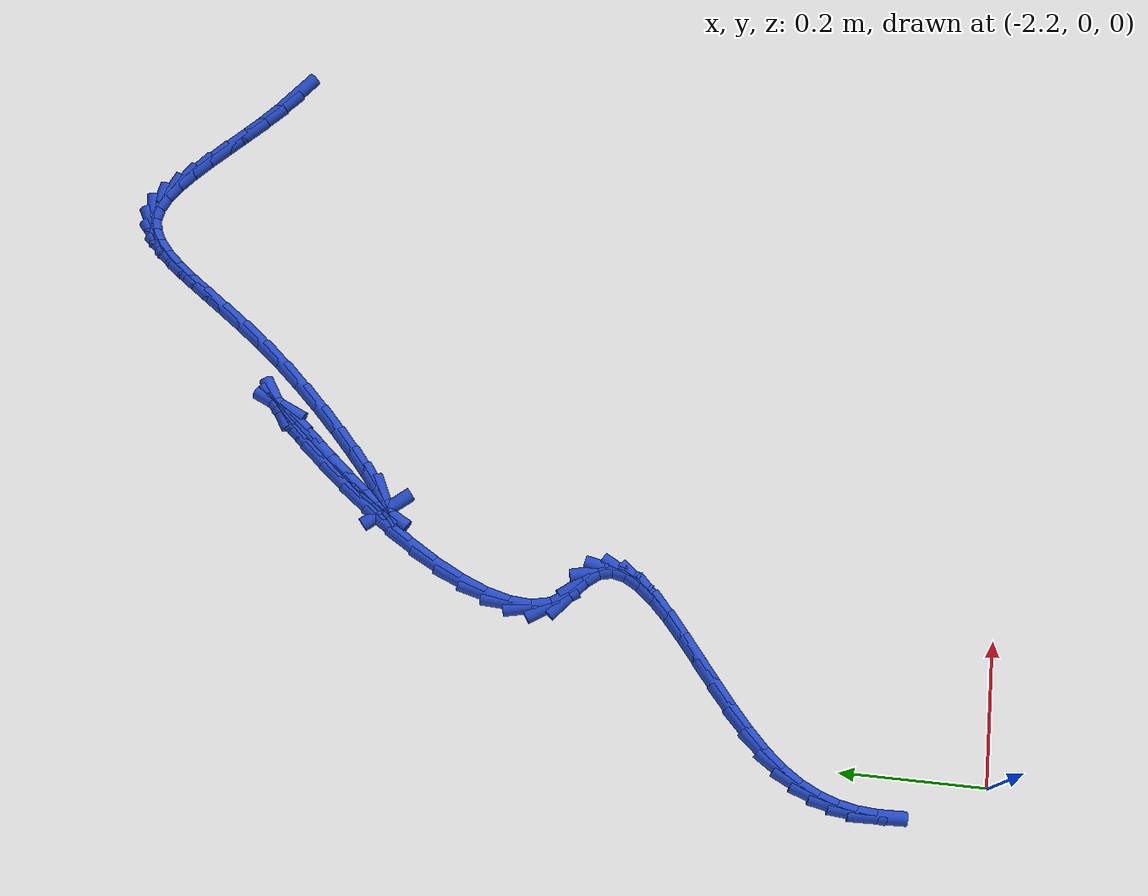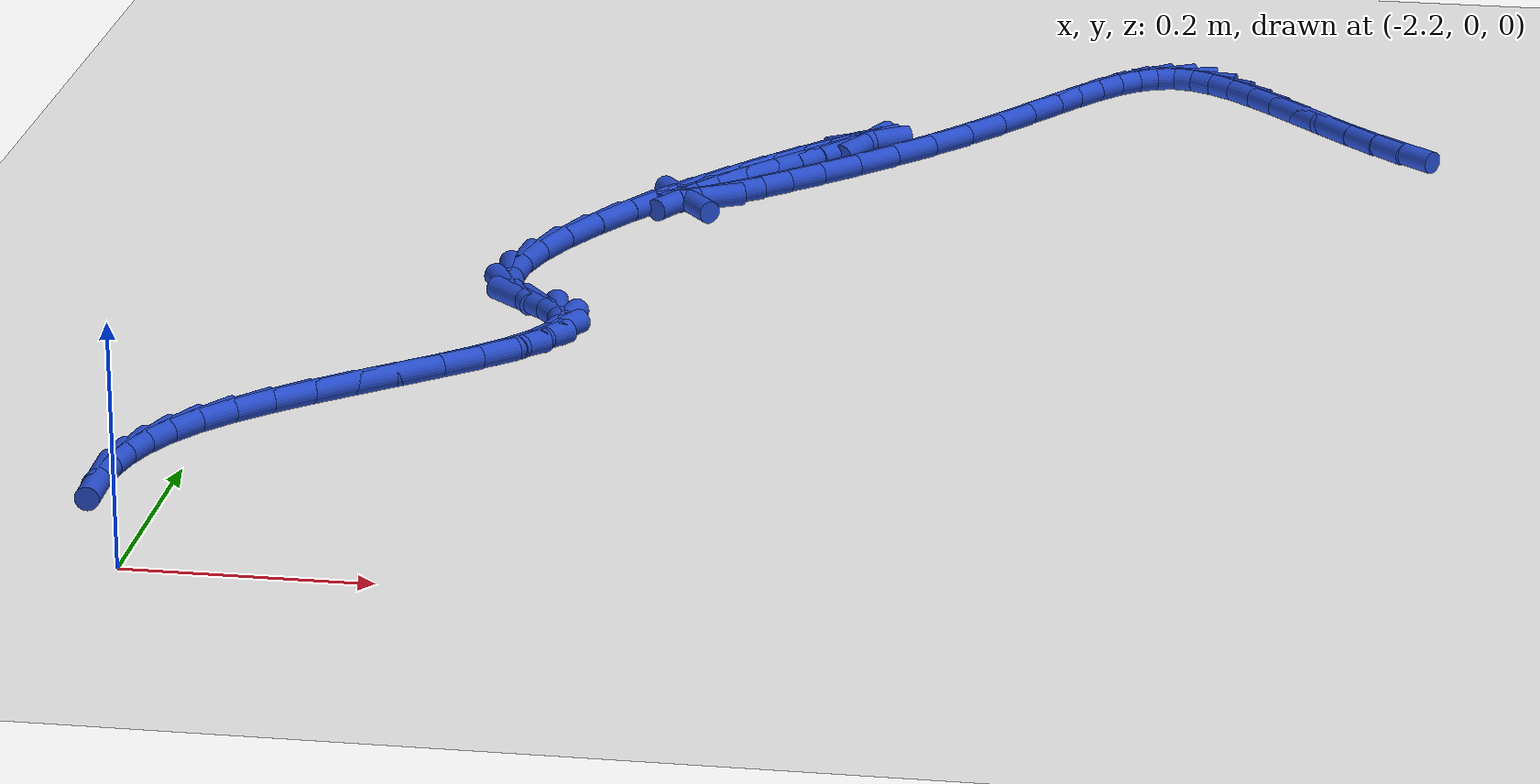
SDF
<sdf version="1.6">
 <world name="default">
  <model name="ground_plane">
   <static>1</static>
   <link name="link">
    <collision name="collision">
     <geometry><plane><normal>0 0 1</normal><size>100 100</size></plane></geometry>
     <surface><friction><ode><mu>100</mu><mu2>50</mu2></ode></friction></surface>
    </collision>
    <visual name="visual">
     <cast_shadows>0</cast_shadows>
     <geometry><plane><normal>0 0 1</normal><size>100 100</size></plane></geometry>
     <material>
      <script><uri>file://media/materials/scripts/gazebo.material</uri><name>Gazebo/WhiteGlow</name></script>
     </material>
    </visual>
   </link>
  </model>
  <model name="line">
   <link name="link_79">
    <pose>-1.2901043442349123 1.0720139163094948 0.01 0 1.57 -0.6776524261375835</pose>
    <collision name="collision">
     <geometry><cylinder><radius>0.01</radius><length>0.08</length></cylinder></geometry>
    </collision>
    <visual name="visual">
     <material>
      <script><name>Gazebo/Blue</name><uri>file://media/materials/scripts/gazebo.material</uri></script>
     </material>
     <geometry><cylinder><radius>0.01</radius><length>0.08</length></cylinder></geometry>
    </visual>
   </link>
   <link name="link_80">
    <pose>-1.3153149210935162 1.0923030354815728 0.01 0 1.57 -0.7389002873766598</pose>
    <collision name="collision">
     <geometry><cylinder><radius>0.01</radius><length>0.08</length></cylinder></geometry>
    </collision>
    <visual name="visual">
     <material>
      <script><name>Gazebo/Blue</name><uri>file://media/materials/scripts/gazebo.material</uri></script>
     </material>
     <geometry><cylinder><radius>0.01</radius><length>0.08</length></cylinder></geometry>
    </visual>
   </link>
   <link name="link_81">
    <pose>-1.3399236407583004 1.1147234241737765 0.01 0 1.57 -0.7763167239685663</pose>
    <collision name="collision">
     <geometry><cylinder><radius>0.01</radius><length>0.08</length></cylinder></geometry>
    </collision>
    <visual name="visual">
     <material>
      <script><name>Gazebo/Blue</name><uri>file://media/materials/scripts/gazebo.material</uri></script>
     </material>
     <geometry><cylinder><radius>0.01</radius><length>0.08</length></cylinder></geometry>
    </visual>
   </link>
   <link name="link_82">
    <pose>-1.363885791238167 1.1382542581348243 0.01 0 1.57 -0.7928532567139746</pose>
    <collision name="collision">
     <geometry><cylinder><radius>0.01</radius><length>0.08</length></cylinder></geometry>
    </collision>
    <visual name="visual">
     <material>
      <script><name>Gazebo/Blue</name><uri>file://media/materials/scripts/gazebo.material</uri></script>
     </material>
     <geometry><cylinder><radius>0.01</radius><length>0.08</length></cylinder></geometry>
    </visual>
   </link>
   <link name="link_83">
    <pose>-1.387156660542018 1.1618747131134333 0.01 0 1.57 -0.7888117175281081</pose>
    <collision name="collision">
     <geometry><cylinder><radius>0.01</radius><length>0.08</length></cylinder></geometry>
    </collision>
    <visual name="visual">
     <material>
      <script><name>Gazebo/Blue</name><uri>file://media/materials/scripts/gazebo.material</uri></script>
     </material>
     <geometry><cylinder><radius>0.01</radius><length>0.08</length></cylinder></geometry>
    </visual>
   </link>
   <link name="link_84">
    <pose>-1.409691536678756 1.1845639648583204 0.01 0 1.57 -0.7614697276646047</pose>
    <collision name="collision">
     <geometry><cylinder><radius>0.01</radius><length>0.08</length></cylinder></geometry>
    </collision>
    <visual name="visual">
     <material>
      <script><name>Gazebo/Blue</name><uri>file://media/materials/scripts/gazebo.material</uri></script>
     </material>
     <geometry><cylinder><radius>0.01</radius><length>0.08</length></cylinder></geometry>
    </visual>
   </link>
   <link name="link_85">
    <pose>-1.4314457076572833 1.2053011891182042 0.01 0 1.57 -0.7037982748605762</pose>
    <collision name="collision">
     <geometry><cylinder><radius>0.01</radius><length>0.08</length></cylinder></geometry>
    </collision>
    <visual name="visual">
     <material>
      <script><name>Gazebo/Blue</name><uri>file://media/materials/scripts/gazebo.material</uri></script>
     </material>
     <geometry><cylinder><radius>0.01</radius><length>0.08</length></cylinder></geometry>
    </visual>
   </link>
   <link name="link_86">
    <pose>-1.4523744614865024 1.2230655616418022 0.01 0 1.57 -0.6016232552019897</pose>
    <collision name="collision">
     <geometry><cylinder><radius>0.01</radius><length>0.08</length></cylinder></geometry>
    </collision>
    <visual name="visual">
     <material>
      <script><name>Gazebo/Blue</name><uri>file://media/materials/scripts/gazebo.material</uri></script>
     </material>
     <geometry><cylinder><radius>0.01</radius><length>0.08</length></cylinder></geometry>
    </visual>
   </link>
   <link name="link_87">
    <pose>-1.4724330861753154 1.2368362581778316 0.01 0 1.57 -0.42898334407492905</pose>
    <collision name="collision">
     <geometry><cylinder><radius>0.01</radius><length>0.08</length></cylinder></geometry>
    </collision>
    <visual name="visual">
     <material>
      <script><name>Gazebo/Blue</name><uri>file://media/materials/scripts/gazebo.material</uri></script>
     </material>
     <geometry><cylinder><radius>0.01</radius><length>0.08</length></cylinder></geometry>
    </visual>
   </link>
   <link name="link_88">
    <pose>-1.4915768697326242 1.2455924544750097 0.01 0 1.57 -0.14964463601095662</pose>
    <collision name="collision">
     <geometry><cylinder><radius>0.01</radius><length>0.08</length></cylinder></geometry>
    </collision>
    <visual name="visual">
     <material>
      <script><name>Gazebo/Blue</name><uri>file://media/materials/scripts/gazebo.material</uri></script>
     </material>
     <geometry><cylinder><radius>0.01</radius><length>0.08</length></cylinder></geometry>
    </visual>
   </link>
   <link name="link_89">
    <pose>-1.5097666722596088 1.248334962950615 0.01 0 1.57 0.20183104182878053</pose>
    <collision name="collision">
     <geometry><cylinder><radius>0.01</radius><length>0.08</length></cylinder></geometry>
    </collision>
    <visual name="visual">
     <material>
      <script><name>Gazebo/Blue</name><uri>file://media/materials/scripts/gazebo.material</uri></script>
     </material>
     <geometry><cylinder><radius>0.01</radius><length>0.08</length></cylinder></geometry>
    </visual>
   </link>
   <link name="link_90">
    <pose>-1.527147232465894 1.2447786043886735 0.01 0 1.57 0.5012429227752904</pose>
    <collision name="collision">
     <geometry><cylinder><radius>0.01</radius><length>0.08</length></cylinder></geometry>
    </collision>
    <visual name="visual">
     <material>
      <script><name>Gazebo/Blue</name><uri>file://media/materials/scripts/gazebo.material</uri></script>
     </material>
     <geometry><cylinder><radius>0.01</radius><length>0.08</length></cylinder></geometry>
    </visual>
   </link>
   <link name="link_91">
    <pose>-1.5440847728310727 1.2354982303630484 0.01 0 1.57 0.7057158744718162</pose>
    <collision name="collision">
     <geometry><cylinder><radius>0.01</radius><length>0.08</length></cylinder></geometry>
    </collision>
    <visual name="visual">
     <material>
      <script><name>Gazebo/Blue</name><uri>file://media/materials/scripts/gazebo.material</uri></script>
     </material>
     <geometry><cylinder><radius>0.01</radius><length>0.08</length></cylinder></geometry>
    </visual>
   </link>
   <link name="link_92">
    <pose>-1.5609586906840764 1.2211198509414565 0.01 0 1.57 0.8314443654275016</pose>
    <collision name="collision">
     <geometry><cylinder><radius>0.01</radius><length>0.08</length></cylinder></geometry>
    </collision>
    <visual name="visual">
     <material>
      <script><name>Gazebo/Blue</name><uri>file://media/materials/scripts/gazebo.material</uri></script>
     </material>
     <geometry><cylinder><radius>0.01</radius><length>0.08</length></cylinder></geometry>
    </visual>
   </link>
   <link name="link_93">
    <pose>-1.578148383353839 1.2022694761916128 0.01 0 1.57 0.9034117900793829</pose>
    <collision name="collision">
     <geometry><cylinder><radius>0.01</radius><length>0.08</length></cylinder></geometry>
    </collision>
    <visual name="visual">
     <material>
      <script><name>Gazebo/Blue</name><uri>file://media/materials/scripts/gazebo.material</uri></script>
     </material>
     <geometry><cylinder><radius>0.01</radius><length>0.08</length></cylinder></geometry>
    </visual>
   </link>
   <link name="link_94">
    <pose>-1.5960332481692932 1.1795731161812342 0.01 0 1.57 0.9391996330216287</pose>
    <collision name="collision">
     <geometry><cylinder><radius>0.01</radius><length>0.08</length></cylinder></geometry>
    </collision>
    <visual name="visual">
     <material>
      <script><name>Gazebo/Blue</name><uri>file://media/materials/scripts/gazebo.material</uri></script>
     </material>
     <geometry><cylinder><radius>0.01</radius><length>0.08</length></cylinder></geometry>
    </visual>
   </link>
   <link name="link_95">
    <pose>-1.6149926824593714 1.1536567809780367 0.01 0 1.57 0.9494120215589066</pose>
    <collision name="collision">
     <geometry><cylinder><radius>0.01</radius><length>0.08</length></cylinder></geometry>
    </collision>
    <visual name="visual">
     <material>
      <script><name>Gazebo/Blue</name><uri>file://media/materials/scripts/gazebo.material</uri></script>
     </material>
     <geometry><cylinder><radius>0.01</radius><length>0.08</length></cylinder></geometry>
    </visual>
   </link>
   <link name="link_96">
    <pose>-1.6354060835530067 1.1251464806497362 0.01 0 1.57 0.9402691108169824</pose>
    <collision name="collision">
     <geometry><cylinder><radius>0.01</radius><length>0.08</length></cylinder></geometry>
    </collision>
    <visual name="visual">
     <material>
      <script><name>Gazebo/Blue</name><uri>file://media/materials/scripts/gazebo.material</uri></script>
     </material>
     <geometry><cylinder><radius>0.01</radius><length>0.08</length></cylinder></geometry>
    </visual>
   </link>
   <link name="link_97">
    <pose>-1.6576528487791318 1.0946682252640492 0.01 0 1.57 0.9154473075839894</pose>
    <collision name="collision">
     <geometry><cylinder><radius>0.01</radius><length>0.08</length></cylinder></geometry>
    </collision>
    <visual name="visual">
     <material>
      <script><name>Gazebo/Blue</name><uri>file://media/materials/scripts/gazebo.material</uri></script>
     </material>
     <geometry><cylinder><radius>0.01</radius><length>0.08</length></cylinder></geometry>
    </visual>
   </link>
   <link name="link_98">
    <pose>-1.6821123754666798 1.0628480248886913 0.01 0 1.57 0.8772695401624631</pose>
    <collision name="collision">
     <geometry><cylinder><radius>0.01</radius><length>0.08</length></cylinder></geometry>
    </collision>
    <visual name="visual">
     <material>
      <script><name>Gazebo/Blue</name><uri>file://media/materials/scripts/gazebo.material</uri></script>
     </material>
     <geometry><cylinder><radius>0.01</radius><length>0.08</length></cylinder></geometry>
    </visual>
   </link>
   <link name="link_99">
    <pose>-1.7091580330420555 1.030313171464681 0.01 0 1.57 0.8347467936540578</pose>
    <collision name="collision">
     <geometry><cylinder><radius>0.01</radius><length>0.08</length></cylinder></geometry>
    </collision>
    <visual name="visual">
     <material>
      <script><name>Gazebo/Blue</name><uri>file://media/materials/scripts/gazebo.material</uri></script>
     </material>
     <geometry><cylinder><radius>0.01</radius><length>0.08</length></cylinder></geometry>
    </visual>
   </link>
   <link name="link_100">
    <pose>-1.7386013283024369 0.997810440733693 0.01 0 1.57 0.7993543192485002</pose>
    <collision name="collision">
     <geometry><cylinder><radius>0.01</radius><length>0.08</length></cylinder></geometry>
    </collision>
    <visual name="visual">
     <material>
      <script><name>Gazebo/Blue</name><uri>file://media/materials/scripts/gazebo.material</uri></script>
     </material>
     <geometry><cylinder><radius>0.01</radius><length>0.08</length></cylinder></geometry>
    </visual>
   </link>
   <link name="link_101">
    <pose>-1.7692427201303538 0.9663016144570251 0.01 0 1.57 0.768691433120469</pose>
    <collision name="collision">
     <geometry><cylinder><radius>0.01</radius><length>0.08</length></cylinder></geometry>
    </collision>
    <visual name="visual">
     <material>
      <script><name>Gazebo/Blue</name><uri>file://media/materials/scripts/gazebo.material</uri></script>
     </material>
     <geometry><cylinder><radius>0.01</radius><length>0.08</length></cylinder></geometry>
    </visual>
   </link>
   <link name="link_102">
    <pose>-1.7997769629702334 0.9367709531431896 0.01 0 1.57 0.7395762721959547</pose>
    <collision name="collision">
     <geometry><cylinder><radius>0.01</radius><length>0.08</length></cylinder></geometry>
    </collision>
    <visual name="visual">
     <material>
      <script><name>Gazebo/Blue</name><uri>file://media/materials/scripts/gazebo.material</uri></script>
     </material>
     <geometry><cylinder><radius>0.01</radius><length>0.08</length></cylinder></geometry>
    </visual>
   </link>
   <link name="link_103">
    <pose>-1.828898811266499 0.910202717300699 0.01 0 1.57 0.7083941769464632</pose>
    <collision name="collision">
     <geometry><cylinder><radius>0.01</radius><length>0.08</length></cylinder></geometry>
    </collision>
    <visual name="visual">
     <material>
      <script><name>Gazebo/Blue</name><uri>file://media/materials/scripts/gazebo.material</uri></script>
     </material>
     <geometry><cylinder><radius>0.01</radius><length>0.08</length></cylinder></geometry>
    </visual>
   </link>
   <link name="link_104">
    <pose>-1.8553030194635756 0.8875811674380657 0.01 0 1.57 0.6688709761731342</pose>
    <collision name="collision">
     <geometry><cylinder><radius>0.01</radius><length>0.08</length></cylinder></geometry>
    </collision>
    <visual name="visual">
     <material>
      <script><name>Gazebo/Blue</name><uri>file://media/materials/scripts/gazebo.material</uri></script>
     </material>
     <geometry><cylinder><radius>0.01</radius><length>0.08</length></cylinder></geometry>
    </visual>
   </link>
   <link name="link_105">
    <pose>-1.877684342005888 0.869890564063802 0.01 0 1.57 0.6043282909779923</pose>
    <collision name="collision">
     <geometry><cylinder><radius>0.01</radius><length>0.08</length></cylinder></geometry>
    </collision>
    <visual name="visual">
     <material>
      <script><name>Gazebo/Blue</name><uri>file://media/materials/scripts/gazebo.material</uri></script>
     </material>
     <geometry><cylinder><radius>0.01</radius><length>0.08</length></cylinder></geometry>
    </visual>
   </link>
   <link name="link_106">
    <pose>-1.8947375333378613 0.8581151676864206 0.01 0 1.57 0.4376786348378197</pose>
    <collision name="collision">
     <geometry><cylinder><radius>0.01</radius><length>0.08</length></cylinder></geometry>
    </collision>
    <visual name="visual">
     <material>
      <script><name>Gazebo/Blue</name><uri>file://media/materials/scripts/gazebo.material</uri></script>
     </material>
     <geometry><cylinder><radius>0.01</radius><length>0.08</length></cylinder></geometry>
    </visual>
   </link>
   <link name="link_107">
    <pose>-1.9051573479039194 0.8532392388144333 0.01 0 1.57 -0.8810441669115423</pose>
    <collision name="collision">
     <geometry><cylinder><radius>0.01</radius><length>0.08</length></cylinder></geometry>
    </collision>
    <visual name="visual">
     <material>
      <script><name>Gazebo/Blue</name><uri>file://media/materials/scripts/gazebo.material</uri></script>
     </material>
     <geometry><cylinder><radius>0.01</radius><length>0.08</length></cylinder></geometry>
    </visual>
   </link>
   <link name="link_108">
    <pose>-1.907638540148488 0.8562470379563528 0.01 0 1.57 1.0590846755172367</pose>
    <collision name="collision">
     <geometry><cylinder><radius>0.01</radius><length>0.08</length></cylinder></geometry>
    </collision>
    <visual name="visual">
     <material>
      <script><name>Gazebo/Blue</name><uri>file://media/materials/scripts/gazebo.material</uri></script>
     </material>
     <geometry><cylinder><radius>0.01</radius><length>0.08</length></cylinder></geometry>
    </visual>
   </link>
   <link name="link_109">
    <pose>-1.901065195925116 0.8679515425732057 0.01 0 1.57 0.9229385195386111</pose>
    <collision name="collision">
     <geometry><cylinder><radius>0.01</radius><length>0.08</length></cylinder></geometry>
    </collision>
    <visual name="visual">
     <material>
      <script><name>Gazebo/Blue</name><uri>file://media/materials/scripts/gazebo.material</uri></script>
     </material>
     <geometry><cylinder><radius>0.01</radius><length>0.08</length></cylinder></geometry>
    </visual>
   </link>
   <link name="link_110">
    <pose>-1.8865041846904893 0.8871910243480584 0.01 0 1.57 0.8810869405465815</pose>
    <collision name="collision">
     <geometry><cylinder><radius>0.01</radius><length>0.08</length></cylinder></geometry>
    </collision>
    <visual name="visual">
     <material>
      <script><name>Gazebo/Blue</name><uri>file://media/materials/scripts/gazebo.material</uri></script>
     </material>
     <geometry><cylinder><radius>0.01</radius><length>0.08</length></cylinder></geometry>
    </visual>
   </link>
   <link name="link_111">
    <pose>-1.866422032023548 0.911537523612506 0.01 0 1.57 0.8628780778216575</pose>
    <collision name="collision">
     <geometry><cylinder><radius>0.01</radius><length>0.08</length></cylinder></geometry>
    </collision>
    <visual name="visual">
     <material>
      <script><name>Gazebo/Blue</name><uri>file://media/materials/scripts/gazebo.material</uri></script>
     </material>
     <geometry><cylinder><radius>0.01</radius><length>0.08</length></cylinder></geometry>
    </visual>
   </link>
   <link name="link_112">
    <pose>-1.8433082081360064 0.9385423233043061 0.01 0 1.57 0.8552338829166365</pose>
    <collision name="collision">
     <geometry><cylinder><radius>0.01</radius><length>0.08</length></cylinder></geometry>
    </collision>
    <visual name="visual">
     <material>
      <script><name>Gazebo/Blue</name><uri>file://media/materials/scripts/gazebo.material</uri></script>
     </material>
     <geometry><cylinder><radius>0.01</radius><length>0.08</length></cylinder></geometry>
    </visual>
   </link>
   <link name="link_113">
    <pose>-1.8196521832395776 0.9657567063612162 0.01 0 1.57 0.8552546061119436</pose>
    <collision name="collision">
     <geometry><cylinder><radius>0.01</radius><length>0.08</length></cylinder></geometry>
    </collision>
    <visual name="visual">
     <material>
      <script><name>Gazebo/Blue</name><uri>file://media/materials/scripts/gazebo.material</uri></script>
     </material>
     <geometry><cylinder><radius>0.01</radius><length>0.08</length></cylinder></geometry>
    </visual>
   </link>
   <link name="link_114">
    <pose>-1.7979434275459765 0.9907319557209942 0.01 0 1.57 0.8655093382421808</pose>
    <collision name="collision">
     <geometry><cylinder><radius>0.01</radius><length>0.08</length></cylinder></geometry>
    </collision>
    <visual name="visual">
     <material>
      <script><name>Gazebo/Blue</name><uri>file://media/materials/scripts/gazebo.material</uri></script>
     </material>
     <geometry><cylinder><radius>0.01</radius><length>0.08</length></cylinder></geometry>
    </visual>
   </link>
   <link name="link_115">
    <pose>-1.7806714112669169 1.011019354321397 0.01 0 1.57 0.9040978821987367</pose>
    <collision name="collision">
     <geometry><cylinder><radius>0.01</radius><length>0.08</length></cylinder></geometry>
    </collision>
    <visual name="visual">
     <material>
      <script><name>Gazebo/Blue</name><uri>file://media/materials/scripts/gazebo.material</uri></script>
     </material>
     <geometry><cylinder><radius>0.01</radius><length>0.08</length></cylinder></geometry>
    </visual>
   </link>
   <link name="link_116">
    <pose>-1.7703166715415162 1.0241783505910396 0.01 0 1.57 1.1476176777409994</pose>
    <collision name="collision">
     <geometry><cylinder><radius>0.01</radius><length>0.08</length></cylinder></geometry>
    </collision>
    <visual name="visual">
     <material>
      <script><name>Gazebo/Blue</name><uri>file://media/materials/scripts/gazebo.material</uri></script>
     </material>
     <geometry><cylinder><radius>0.01</radius><length>0.08</length></cylinder></geometry>
    </visual>
   </link>
   <link name="link_117">
    <pose>-1.768237895683844 1.0287938468985736 0.01 0 1.57 0.5564982970648445</pose>
    <collision name="collision">
     <geometry><cylinder><radius>0.01</radius><length>0.08</length></cylinder></geometry>
    </collision>
    <visual name="visual">
     <material>
      <script><name>Gazebo/Blue</name><uri>file://media/materials/scripts/gazebo.material</uri></script>
     </material>
     <geometry><cylinder><radius>0.01</radius><length>0.08</length></cylinder></geometry>
    </visual>
   </link>
   <link name="link_118">
    <pose>-1.7735925930150356 1.0254627855445342 0.01 0 1.57 0.7293047658415545</pose>
    <collision name="collision">
     <geometry><cylinder><radius>0.01</radius><length>0.08</length></cylinder></geometry>
    </collision>
    <visual name="visual">
     <material>
      <script><name>Gazebo/Blue</name><uri>file://media/materials/scripts/gazebo.material</uri></script>
     </material>
     <geometry><cylinder><radius>0.01</radius><length>0.08</length></cylinder></geometry>
    </visual>
   </link>
   <link name="link_119">
    <pose>-1.7852822200753438 1.0150161600608685 0.01 0 1.57 0.7796099511226037</pose>
    <collision name="collision">
     <geometry><cylinder><radius>0.01</radius><length>0.08</length></cylinder></geometry>
    </collision>
    <visual name="visual">
     <material>
      <script><name>Gazebo/Blue</name><uri>file://media/materials/scripts/gazebo.material</uri></script>
     </material>
     <geometry><cylinder><radius>0.01</radius><length>0.08</length></cylinder></geometry>
    </visual>
   </link>
   <link name="link_120">
    <pose>-1.8022082334050236 0.9982849639795236 0.01 0 1.57 0.8113103400034559</pose>
    <collision name="collision">
     <geometry><cylinder><radius>0.01</radius><length>0.08</length></cylinder></geometry>
    </collision>
    <visual name="visual">
     <material>
      <script><name>Gazebo/Blue</name><uri>file://media/materials/scripts/gazebo.material</uri></script>
     </material>
     <geometry><cylinder><radius>0.01</radius><length>0.08</length></cylinder></geometry>
    </visual>
   </link>
   <link name="link_121">
    <pose>-1.823272089544327 0.9761001908324461 0.01 0 1.57 0.8384650482379551</pose>
    <collision name="collision">
     <geometry><cylinder><radius>0.01</radius><length>0.08</length></cylinder></geometry>
    </collision>
    <visual name="visual">
     <material>
      <script><name>Gazebo/Blue</name><uri>file://media/materials/scripts/gazebo.material</uri></script>
     </material>
     <geometry><cylinder><radius>0.01</radius><length>0.08</length></cylinder></geometry>
    </visual>
   </link>
   <link name="link_122">
    <pose>-1.8473752450335088 0.9492928341515834 0.01 0 1.57 0.8656422482386331</pose>
    <collision name="collision">
     <geometry><cylinder><radius>0.01</radius><length>0.08</length></cylinder></geometry>
    </collision>
    <visual name="visual">
     <material>
      <script><name>Gazebo/Blue</name><uri>file://media/materials/scripts/gazebo.material</uri></script>
     </material>
     <geometry><cylinder><radius>0.01</radius><length>0.08</length></cylinder></geometry>
    </visual>
   </link>
   <link name="link_123">
    <pose>-1.8734191564128224 0.9186938874688826 0.01 0 1.57 0.8953564492134432</pose>
    <collision name="collision">
     <geometry><cylinder><radius>0.01</radius><length>0.08</length></cylinder></geometry>
    </collision>
    <visual name="visual">
     <material>
      <script><name>Gazebo/Blue</name><uri>file://media/materials/scripts/gazebo.material</uri></script>
     </material>
     <geometry><cylinder><radius>0.01</radius><length>0.08</length></cylinder></geometry>
    </visual>
   </link>
   <link name="link_124">
    <pose>-1.9003052802225213 0.8851343443162912 0.01 0 1.57 0.9297577196135308</pose>
    <collision name="collision">
     <geometry><cylinder><radius>0.01</radius><length>0.08</length></cylinder></geometry>
    </collision>
    <visual name="visual">
     <material>
      <script><name>Gazebo/Blue</name><uri>file://media/materials/scripts/gazebo.material</uri></script>
     </material>
     <geometry><cylinder><radius>0.01</radius><length>0.08</length></cylinder></geometry>
    </visual>
   </link>
   <link name="link_125">
    <pose>-1.926935073002859 0.8494451982257547 0.01 0 1.57 0.9713447259498719</pose>
    <collision name="collision">
     <geometry><cylinder><radius>0.01</radius><length>0.08</length></cylinder></geometry>
    </collision>
    <visual name="visual">
     <material>
      <script><name>Gazebo/Blue</name><uri>file://media/materials/scripts/gazebo.material</uri></script>
     </material>
     <geometry><cylinder><radius>0.01</radius><length>0.08</length></cylinder></geometry>
    </visual>
   </link>
   <link name="link_126">
    <pose>-1.95220999129409 0.8124574427292217 0.01 0 1.57 1.0235677569930632</pose>
    <collision name="collision">
     <geometry><cylinder><radius>0.01</radius><length>0.08</length></cylinder></geometry>
    </collision>
    <visual name="visual">
     <material>
      <script><name>Gazebo/Blue</name><uri>file://media/materials/scripts/gazebo.material</uri></script>
     </material>
     <geometry><cylinder><radius>0.01</radius><length>0.08</length></cylinder></geometry>
    </visual>
   </link>
   <link name="link_127">
    <pose>-1.9750314916364675 0.7750020713586383 0.01 0 1.57 1.091665422816056</pose>
    <collision name="collision">
     <geometry><cylinder><radius>0.01</radius><length>0.08</length></cylinder></geometry>
    </collision>
    <visual name="visual">
     <material>
      <script><name>Gazebo/Blue</name><uri>file://media/materials/scripts/gazebo.material</uri></script>
     </material>
     <geometry><cylinder><radius>0.01</radius><length>0.08</length></cylinder></geometry>
    </visual>
   </link>
   <link name="link_128">
    <pose>-1.9943010305702447 0.7379100776459522 0.01 0 1.57 1.1840621325940544</pose>
    <collision name="collision">
     <geometry><cylinder><radius>0.01</radius><length>0.08</length></cylinder></geometry>
    </collision>
    <visual name="visual">
     <material>
      <script><name>Gazebo/Blue</name><uri>file://media/materials/scripts/gazebo.material</uri></script>
     </material>
     <geometry><cylinder><radius>0.01</radius><length>0.08</length></cylinder></geometry>
    </visual>
   </link>
   <link name="link_129">
    <pose>-2.008920064635676 0.7020124551231101 0.01 0 1.57 1.3146814096108426</pose>
    <collision name="collision">
     <geometry><cylinder><radius>0.01</radius><length>0.08</length></cylinder></geometry>
    </collision>
    <visual name="visual">
     <material>
      <script><name>Gazebo/Blue</name><uri>file://media/materials/scripts/gazebo.material</uri></script>
     </material>
     <geometry><cylinder><radius>0.01</radius><length>0.08</length></cylinder></geometry>
    </visual>
   </link>
   <link name="link_130">
    <pose>-2.017790050373014 0.6681401973220589 0.01 0 1.57 1.5056834310363034</pose>
    <collision name="collision">
     <geometry><cylinder><radius>0.01</radius><length>0.08</length></cylinder></geometry>
    </collision>
    <visual name="visual">
     <material>
      <script><name>Gazebo/Blue</name><uri>file://media/materials/scripts/gazebo.material</uri></script>
     </material>
     <geometry><cylinder><radius>0.01</radius><length>0.08</length></cylinder></geometry>
    </visual>
   </link>
   <link name="link_131">
    <pose>-2.019812444322514 0.6371242977747461 0.01 0 1.57 -1.3573383533314167</pose>
    <collision name="collision">
     <geometry><cylinder><radius>0.01</radius><length>0.08</length></cylinder></geometry>
    </collision>
    <visual name="visual">
     <material>
      <script><name>Gazebo/Blue</name><uri>file://media/materials/scripts/gazebo.material</uri></script>
     </material>
     <geometry><cylinder><radius>0.01</radius><length>0.08</length></cylinder></geometry>
    </visual>
   </link>
   <link name="link_132">
    <pose>-2.0138887030244277 0.6097957500131184 0.01 0 1.57 -0.990063732704933</pose>
    <collision name="collision">
     <geometry><cylinder><radius>0.01</radius><length>0.08</length></cylinder></geometry>
    </collision>
    <visual name="visual">
     <material>
      <script><name>Gazebo/Blue</name><uri>file://media/materials/scripts/gazebo.material</uri></script>
     </material>
     <geometry><cylinder><radius>0.01</radius><length>0.08</length></cylinder></geometry>
    </visual>
   </link>
   <link name="link_133">
    <pose>-1.998920283019011 0.5869855475691232 0.01 0 1.57 -0.7113225015406298</pose>
    <collision name="collision">
     <geometry><cylinder><radius>0.01</radius><length>0.08</length></cylinder></geometry>
    </collision>
    <visual name="visual">
     <material>
      <script><name>Gazebo/Blue</name><uri>file://media/materials/scripts/gazebo.material</uri></script>
     </material>
     <geometry><cylinder><radius>0.01</radius><length>0.08</length></cylinder></geometry>
    </visual>
   </link>
   <link name="link_134">
    <pose>-1.9773628336437237 0.5684066729664847 0.01 0 1.57 -0.9057726340121423</pose>
    <collision name="collision">
     <geometry><cylinder><radius>0.01</radius><length>0.08</length></cylinder></geometry>
    </collision>
    <visual name="visual">
     <material>
      <script><name>Gazebo/Blue</name><uri>file://media/materials/scripts/gazebo.material</uri></script>
     </material>
     <geometry><cylinder><radius>0.01</radius><length>0.08</length></cylinder></geometry>
    </visual>
   </link>
   <link name="link_135">
    <pose>-1.962992114879515 0.5500810256427402 0.01 0 1.57 -1.3424193669190458</pose>
    <collision name="collision">
     <geometry><cylinder><radius>0.01</radius><length>0.08</length></cylinder></geometry>
    </collision>
    <visual name="visual">
     <material>
      <script><name>Gazebo/Blue</name><uri>file://media/materials/scripts/gazebo.material</uri></script>
     </material>
     <geometry><cylinder><radius>0.01</radius><length>0.08</length></cylinder></geometry>
    </visual>
   </link>
   <link name="link_136">
    <pose>-1.9585442999672351 0.5309450414193039 0.01 0 1.57 1.3617149216545148</pose>
    <collision name="collision">
     <geometry><cylinder><radius>0.01</radius><length>0.08</length></cylinder></geometry>
    </collision>
    <visual name="visual">
     <material>
      <script><name>Gazebo/Blue</name><uri>file://media/materials/scripts/gazebo.material</uri></script>
     </material>
     <geometry><cylinder><radius>0.01</radius><length>0.08</length></cylinder></geometry>
    </visual>
   </link>
   <link name="link_137">
    <pose>-1.9627677821104745 0.511040072773036 0.01 0 1.57 1.057034764212933</pose>
    <collision name="collision">
     <geometry><cylinder><radius>0.01</radius><length>0.08</length></cylinder></geometry>
    </collision>
    <visual name="visual">
     <material>
      <script><name>Gazebo/Blue</name><uri>file://media/materials/scripts/gazebo.material</uri></script>
     </material>
     <geometry><cylinder><radius>0.01</radius><length>0.08</length></cylinder></geometry>
    </visual>
   </link>
   <link name="link_138">
    <pose>-1.974410909174875 0.4904074847428409 0.01 0 1.57 0.8748020761362706</pose>
    <collision name="collision">
     <geometry><cylinder><radius>0.01</radius><length>0.08</length></cylinder></geometry>
    </collision>
    <visual name="visual">
     <material>
      <script><name>Gazebo/Blue</name><uri>file://media/materials/scripts/gazebo.material</uri></script>
     </material>
     <geometry><cylinder><radius>0.01</radius><length>0.08</length></cylinder></geometry>
    </visual>
   </link>
   <link name="link_139">
    <pose>-1.9922220290260781 0.4690886423676238 0.01 0 1.57 0.768310803385554</pose>
    <collision name="collision">
     <geometry><cylinder><radius>0.01</radius><length>0.08</length></cylinder></geometry>
    </collision>
    <visual name="visual">
     <material>
      <script><name>Gazebo/Blue</name><uri>file://media/materials/scripts/gazebo.material</uri></script>
     </material>
     <geometry><cylinder><radius>0.01</radius><length>0.08</length></cylinder></geometry>
    </visual>
   </link>
   <link name="link_140">
    <pose>-2.014949489529724 0.44712491068628923 0.01 0 1.57 0.7074327565715421</pose>
    <collision name="collision">
     <geometry><cylinder><radius>0.01</radius><length>0.08</length></cylinder></geometry>
    </collision>
    <visual name="visual">
     <material>
      <script><name>Gazebo/Blue</name><uri>file://media/materials/scripts/gazebo.material</uri></script>
     </material>
     <geometry><cylinder><radius>0.01</radius><length>0.08</length></cylinder></geometry>
    </visual>
   </link>
   <link name="link_141">
    <pose>-2.041341638551456 0.42455765473774115 0.01 0 1.57 0.6765432899637185</pose>
    <collision name="collision">
     <geometry><cylinder><radius>0.01</radius><length>0.08</length></cylinder></geometry>
    </collision>
    <visual name="visual">
     <material>
      <script><name>Gazebo/Blue</name><uri>file://media/materials/scripts/gazebo.material</uri></script>
     </material>
     <geometry><cylinder><radius>0.01</radius><length>0.08</length></cylinder></geometry>
    </visual>
   </link>
   <link name="link_142">
    <pose>-2.0701468239569145 0.4014282395608847 0.01 0 1.57 0.6681329811592773</pose>
    <collision name="collision">
     <geometry><cylinder><radius>0.01</radius><length>0.08</length></cylinder></geometry>
    </collision>
    <visual name="visual">
     <material>
      <script><name>Gazebo/Blue</name><uri>file://media/materials/scripts/gazebo.material</uri></script>
     </material>
     <geometry><cylinder><radius>0.01</radius><length>0.08</length></cylinder></geometry>
    </visual>
   </link>
   <link name="link_143">
    <pose>-2.100113393611742 0.3777780301946244 0.01 0 1.57 0.6793890795986216</pose>
    <collision name="collision">
     <geometry><cylinder><radius>0.01</radius><length>0.08</length></cylinder></geometry>
    </collision>
    <visual name="visual">
     <material>
      <script><name>Gazebo/Blue</name><uri>file://media/materials/scripts/gazebo.material</uri></script>
     </material>
     <geometry><cylinder><radius>0.01</radius><length>0.08</length></cylinder></geometry>
    </visual>
   </link>
   <link name="link_144">
    <pose>-2.1299896953815782 0.35364839167786477 0.01 0 1.57 0.7108375166207127</pose>
    <collision name="collision">
     <geometry><cylinder><radius>0.01</radius><length>0.08</length></cylinder></geometry>
    </collision>
    <visual name="visual">
     <material>
      <script><name>Gazebo/Blue</name><uri>file://media/materials/scripts/gazebo.material</uri></script>
     </material>
     <geometry><cylinder><radius>0.01</radius><length>0.08</length></cylinder></geometry>
    </visual>
   </link>
   <link name="link_145">
    <pose>-2.1585240771320664 0.3290806890495105 0.01 0 1.57 0.766219612619814</pose>
    <collision name="collision">
     <geometry><cylinder><radius>0.01</radius><length>0.08</length></cylinder></geometry>
    </collision>
    <visual name="visual">
     <material>
      <script><name>Gazebo/Blue</name><uri>file://media/materials/scripts/gazebo.material</uri></script>
     </material>
     <geometry><cylinder><radius>0.01</radius><length>0.08</length></cylinder></geometry>
    </visual>
   </link>
   <link name="link_146">
    <pose>-2.184464886728847 0.3041162873484662 0.01 0 1.57 0.8532787438179379</pose>
    <collision name="collision">
     <geometry><cylinder><radius>0.01</radius><length>0.08</length></cylinder></geometry>
    </collision>
    <visual name="visual">
     <material>
      <script><name>Gazebo/Blue</name><uri>file://media/materials/scripts/gazebo.material</uri></script>
     </material>
     <geometry><cylinder><radius>0.01</radius><length>0.08</length></cylinder></geometry>
    </visual>
   </link>
   <link name="link_147">
    <pose>-2.20656106483046 0.27879653572942886 0.01 0 1.57 0.9746639819149284</pose>
    <collision name="collision">
     <geometry><cylinder><radius>0.01</radius><length>0.08</length></cylinder></geometry>
    </collision>
    <visual name="visual">
     <material>
      <script><name>Gazebo/Blue</name><uri>file://media/materials/scripts/gazebo.material</uri></script>
     </material>
     <geometry><cylinder><radius>0.01</radius><length>0.08</length></cylinder></geometry>
    </visual>
   </link>
   <link name="link_148">
    <pose>-2.223960142663572 0.25315210289641266 0.01 0 1.57 1.108517955229548</pose>
    <collision name="collision">
     <geometry><cylinder><radius>0.01</radius><length>0.08</length></cylinder></geometry>
    </collision>
    <visual name="visual">
     <material>
      <script><name>Gazebo/Blue</name><uri>file://media/materials/scripts/gazebo.material</uri></script>
     </material>
     <geometry><cylinder><radius>0.01</radius><length>0.08</length></cylinder></geometry>
    </visual>
   </link>
   <link name="link_149">
    <pose>-2.2368995531198577 0.2271844530465688 0.01 0 1.57 1.2443642447432404</pose>
    <collision name="collision">
     <geometry><cylinder><radius>0.01</radius><length>0.08</length></cylinder></geometry>
    </collision>
    <visual name="visual">
     <material>
      <script><name>Gazebo/Blue</name><uri>file://media/materials/scripts/gazebo.material</uri></script>
     </material>
     <geometry><cylinder><radius>0.01</radius><length>0.08</length></cylinder></geometry>
    </visual>
   </link>
   <link name="link_150">
    <pose>-2.245801326157824 0.20089010399841795 0.01 0 1.57 1.3748002616731003</pose>
    <collision name="collision">
     <geometry><cylinder><radius>0.01</radius><length>0.08</length></cylinder></geometry>
    </collision>
    <visual name="visual">
     <material>
      <script><name>Gazebo/Blue</name><uri>file://media/materials/scripts/gazebo.material</uri></script>
     </material>
     <geometry><cylinder><radius>0.01</radius><length>0.08</length></cylinder></geometry>
    </visual>
   </link>
   <link name="link_151">
    <pose>-2.251087491735976 0.17426557357048053 0.01 0 1.57 1.493328217712628</pose>
    <collision name="collision">
     <geometry><cylinder><radius>0.01</radius><length>0.08</length></cylinder></geometry>
    </collision>
    <visual name="visual">
     <material>
      <script><name>Gazebo/Blue</name><uri>file://media/materials/scripts/gazebo.material</uri></script>
     </material>
     <geometry><cylinder><radius>0.01</radius><length>0.08</length></cylinder></geometry>
    </visual>
   </link>
   <link name="link_152">
    <pose>-2.2531800798128203 0.14730737958127818 0.01 0 1.57 -1.5459268988758528</pose>
    <collision name="collision">
     <geometry><cylinder><radius>0.01</radius><length>0.08</length></cylinder></geometry>
    </collision>
    <visual name="visual">
     <material>
      <script><name>Gazebo/Blue</name><uri>file://media/materials/scripts/gazebo.material</uri></script>
     </material>
     <geometry><cylinder><radius>0.01</radius><length>0.08</length></cylinder></geometry>
    </visual>
   </link>
  </model>
 </world>
</sdf>
